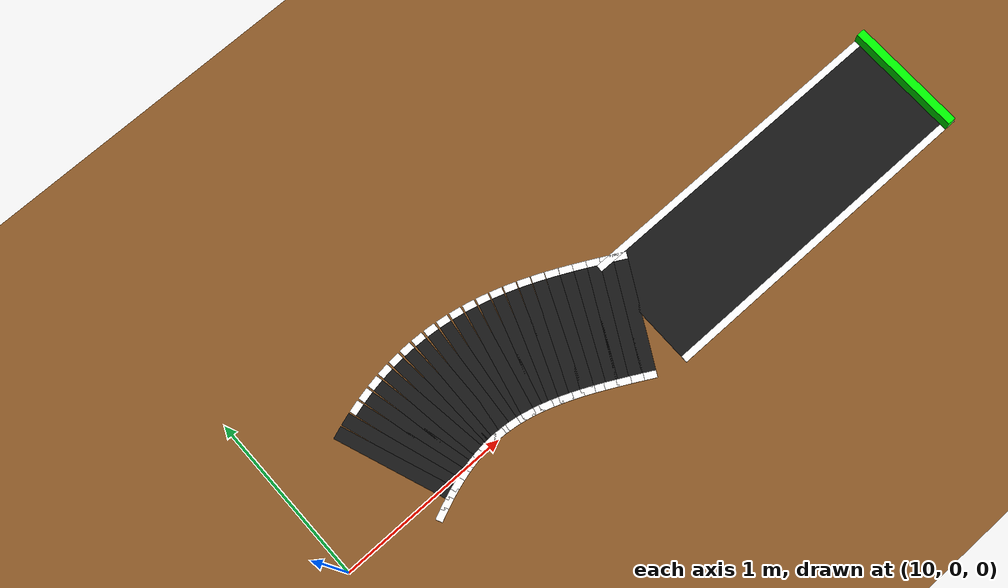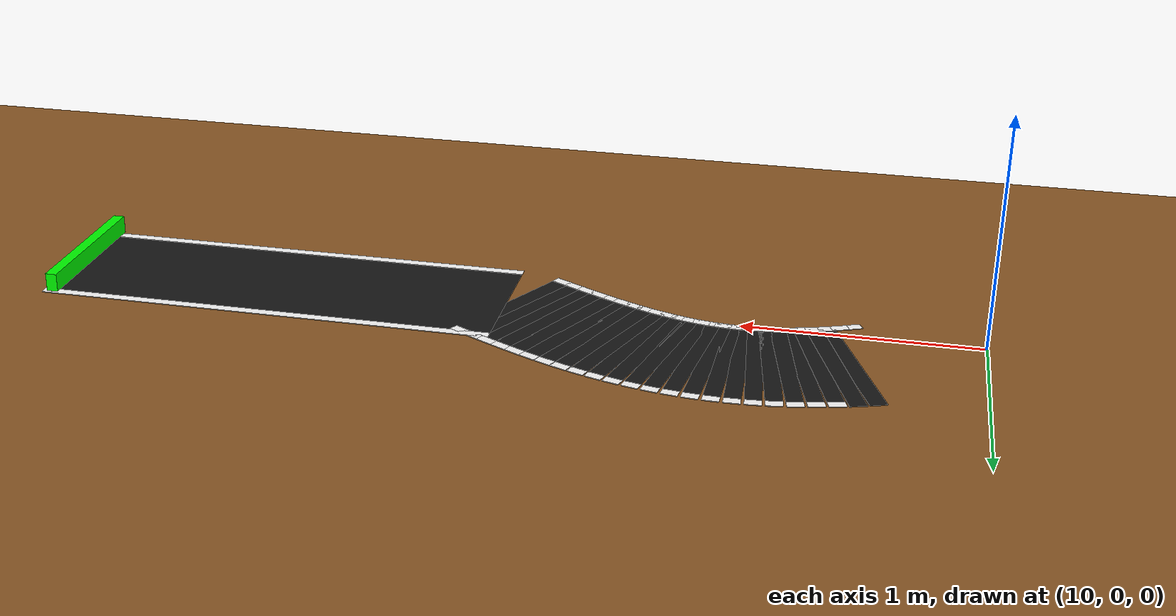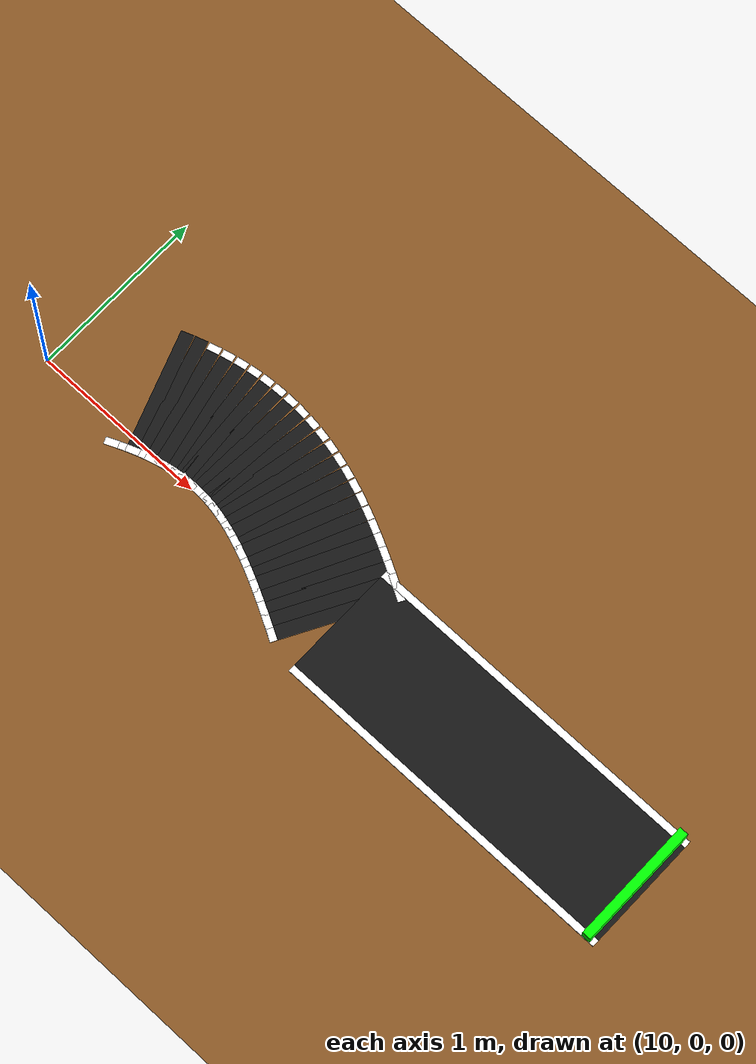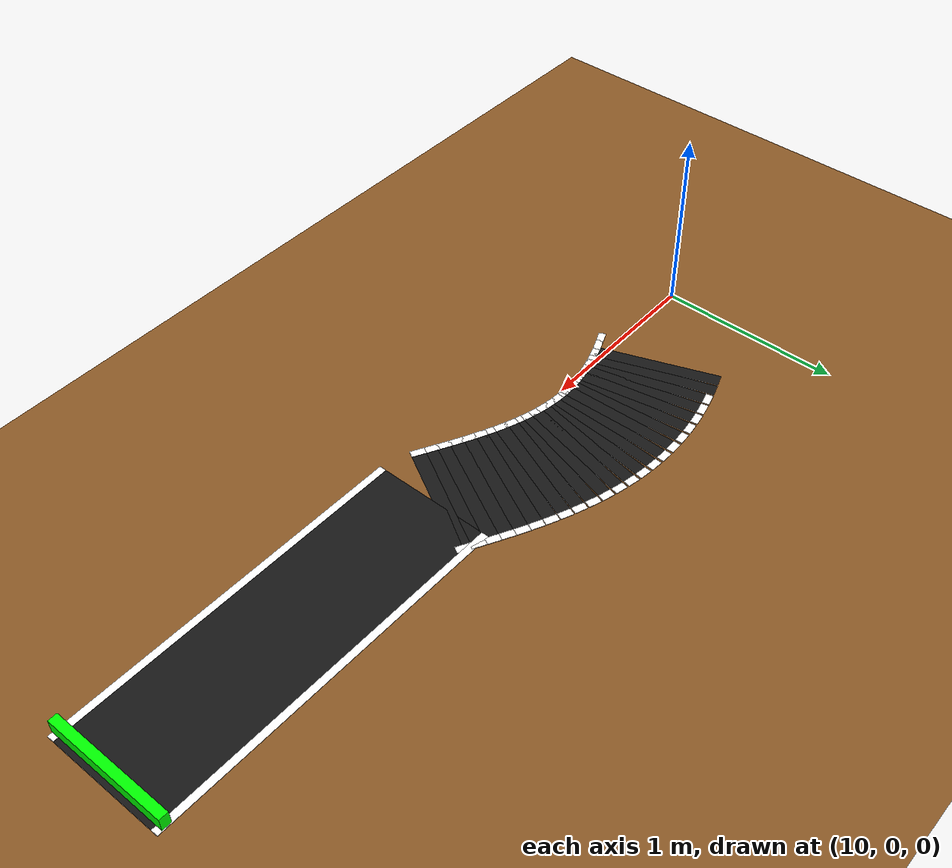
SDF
<sdf version="1.9">
 <world name="lka_world">
  <model name="ground_plane">
   <static>true</static>
   <link name="link">
    <collision name="col">
     <geometry><plane><normal>0 0 1</normal><size>100 100</size></plane></geometry>
     <surface><friction><ode><mu>0.8</mu><mu2>0.8</mu2></ode></friction></surface>
    </collision>
    <visual name="vis">
     <geometry><plane><normal>0 0 1</normal><size>100 100</size></plane></geometry>
     <material><ambient>0.45 0.28 0.10 1</ambient><diffuse>0.55 0.35 0.15 1</diffuse></material>
    </visual>
   </link>
  </model>
  <model name="c3_right_6">
   <static>true</static>
   <pose>10.539553 -0.093383 0.002000 0.000000 0.000000 0.415829</pose>
   <link name="link">
    <collision name="col">
     <geometry><box><size>0.074318 0.040000 0.003000</size></box></geometry>
     <surface><friction><ode><mu>1.0</mu><mu2>1.0</mu2></ode></friction></surface>
    </collision>
    <visual name="vis">
     <geometry><box><size>0.074318 0.040000 0.003000</size></box></geometry>
     <material><ambient>1.0 1.0 1.0 1</ambient><diffuse>1.0 1.0 1.0 1</diffuse></material>
    </visual>
   </link>
  </model>
  <model name="c3_right_7">
   <static>true</static>
   <pose>10.593244 -0.070571 0.002000 0.000000 0.000000 0.386829</pose>
   <link name="link">
    <collision name="col">
     <geometry><box><size>0.073483 0.040000 0.003000</size></box></geometry>
     <surface><friction><ode><mu>1.0</mu><mu2>1.0</mu2></ode></friction></surface>
    </collision>
    <visual name="vis">
     <geometry><box><size>0.073483 0.040000 0.003000</size></box></geometry>
     <material><ambient>1.0 1.0 1.0 1</ambient><diffuse>1.0 1.0 1.0 1</diffuse></material>
    </visual>
   </link>
  </model>
  <model name="c3_road_8">
   <static>true</static>
   <pose>10.531250 0.259333 0.001000 0.000000 0.000000 0.353679</pose>
   <link name="link">
    <collision name="col">
     <geometry><box><size>0.072621 0.700000 0.002000</size></box></geometry>
     <surface><friction><ode><mu>1.0</mu><mu2>1.0</mu2></ode></friction></surface>
    </collision>
    <visual name="vis">
     <geometry><box><size>0.072621 0.700000 0.002000</size></box></geometry>
     <material><ambient>0.06 0.06 0.06 1</ambient><diffuse>0.09 0.09 0.09 1</diffuse></material>
    </visual>
   </link>
  </model>
  <model name="c3_right_8">
   <static>true</static>
   <pose>10.645546 -0.050242 0.002000 0.000000 0.000000 0.353679</pose>
   <link name="link">
    <collision name="col">
     <geometry><box><size>0.072621 0.040000 0.003000</size></box></geometry>
     <surface><friction><ode><mu>1.0</mu><mu2>1.0</mu2></ode></friction></surface>
    </collision>
    <visual name="vis">
     <geometry><box><size>0.072621 0.040000 0.003000</size></box></geometry>
     <material><ambient>1.0 1.0 1.0 1</ambient><diffuse>1.0 1.0 1.0 1</diffuse></material>
    </visual>
   </link>
  </model>
  <model name="c3_road_9">
   <static>true</static>
   <pose>10.593750 0.281123 0.001000 0.000000 0.000000 0.316489</pose>
   <link name="link">
    <collision name="col">
     <geometry><box><size>0.071764 0.700000 0.002000</size></box></geometry>
     <surface><friction><ode><mu>1.0</mu><mu2>1.0</mu2></ode></friction></surface>
    </collision>
    <visual name="vis">
     <geometry><box><size>0.071764 0.700000 0.002000</size></box></geometry>
     <material><ambient>0.06 0.06 0.06 1</ambient><diffuse>0.09 0.09 0.09 1</diffuse></material>
    </visual>
   </link>
  </model>
  <model name="c3_right_9">
   <static>true</static>
   <pose>10.696457 -0.032488 0.002000 0.000000 0.000000 0.316489</pose>
   <link name="link">
    <collision name="col">
     <geometry><box><size>0.071764 0.040000 0.003000</size></box></geometry>
     <surface><friction><ode><mu>1.0</mu><mu2>1.0</mu2></ode></friction></surface>
    </collision>
    <visual name="vis">
     <geometry><box><size>0.071764 0.040000 0.003000</size></box></geometry>
     <material><ambient>1.0 1.0 1.0 1</ambient><diffuse>1.0 1.0 1.0 1</diffuse></material>
    </visual>
   </link>
  </model>
  <model name="c3_road_10">
   <static>true</static>
   <pose>10.656250 0.300205 0.001000 0.000000 0.000000 0.275453</pose>
   <link name="link">
    <collision name="col">
     <geometry><box><size>0.070947 0.700000 0.002000</size></box></geometry>
     <surface><friction><ode><mu>1.0</mu><mu2>1.0</mu2></ode></friction></surface>
    </collision>
    <visual name="vis">
     <geometry><box><size>0.070947 0.700000 0.002000</size></box></geometry>
     <material><ambient>0.06 0.06 0.06 1</ambient><diffuse>0.09 0.09 0.09 1</diffuse></material>
    </visual>
   </link>
  </model>
  <model name="c3_left_10">
   <static>true</static>
   <pose>10.566496 0.617765 0.002000 0.000000 0.000000 0.275453</pose>
   <link name="link">
    <collision name="col">
     <geometry><box><size>0.070947 0.040000 0.003000</size></box></geometry>
     <surface><friction><ode><mu>1.0</mu><mu2>1.0</mu2></ode></friction></surface>
    </collision>
    <visual name="vis">
     <geometry><box><size>0.070947 0.040000 0.003000</size></box></geometry>
     <material><ambient>1.0 1.0 1.0 1</ambient><diffuse>1.0 1.0 1.0 1</diffuse></material>
    </visual>
   </link>
  </model>
  <model name="c3_right_10">
   <static>true</static>
   <pose>10.746004 -0.017355 0.002000 0.000000 0.000000 0.275453</pose>
   <link name="link">
    <collision name="col">
     <geometry><box><size>0.070947 0.040000 0.003000</size></box></geometry>
     <surface><friction><ode><mu>1.0</mu><mu2>1.0</mu2></ode></friction></surface>
    </collision>
    <visual name="vis">
     <geometry><box><size>0.070947 0.040000 0.003000</size></box></geometry>
     <material><ambient>1.0 1.0 1.0 1</ambient><diffuse>1.0 1.0 1.0 1</diffuse></material>
    </visual>
   </link>
  </model>
  <model name="c3_road_11">
   <static>true</static>
   <pose>10.718750 0.316396 0.001000 0.000000 0.000000 0.230866</pose>
   <link name="link">
    <collision name="col">
     <geometry><box><size>0.070202 0.700000 0.002000</size></box></geometry>
     <surface><friction><ode><mu>1.0</mu><mu2>1.0</mu2></ode></friction></surface>
    </collision>
    <visual name="vis">
     <geometry><box><size>0.070202 0.700000 0.002000</size></box></geometry>
     <material><ambient>0.06 0.06 0.06 1</ambient><diffuse>0.09 0.09 0.09 1</diffuse></material>
    </visual>
   </link>
  </model>
  <model name="c3_left_11">
   <static>true</static>
   <pose>10.643239 0.637641 0.002000 0.000000 0.000000 0.230866</pose>
   <link name="link">
    <collision name="col">
     <geometry><box><size>0.070202 0.040000 0.003000</size></box></geometry>
     <surface><friction><ode><mu>1.0</mu><mu2>1.0</mu2></ode></friction></surface>
    </collision>
    <visual name="vis">
     <geometry><box><size>0.070202 0.040000 0.003000</size></box></geometry>
     <material><ambient>1.0 1.0 1.0 1</ambient><diffuse>1.0 1.0 1.0 1</diffuse></material>
    </visual>
   </link>
  </model>
  <model name="c3_right_11">
   <static>true</static>
   <pose>10.794261 -0.004848 0.002000 0.000000 0.000000 0.230866</pose>
   <link name="link">
    <collision name="col">
     <geometry><box><size>0.070202 0.040000 0.003000</size></box></geometry>
     <surface><friction><ode><mu>1.0</mu><mu2>1.0</mu2></ode></friction></surface>
    </collision>
    <visual name="vis">
     <geometry><box><size>0.070202 0.040000 0.003000</size></box></geometry>
     <material><ambient>1.0 1.0 1.0 1</ambient><diffuse>1.0 1.0 1.0 1</diffuse></material>
    </visual>
   </link>
  </model>
  <model name="c3_road_12">
   <static>true</static>
   <pose>10.781250 0.329540 0.001000 0.000000 0.000000 0.183137</pose>
   <link name="link">
    <collision name="col">
     <geometry><box><size>0.069562 0.700000 0.002000</size></box></geometry>
     <surface><friction><ode><mu>1.0</mu><mu2>1.0</mu2></ode></friction></surface>
    </collision>
    <visual name="vis">
     <geometry><box><size>0.069562 0.700000 0.002000</size></box></geometry>
     <material><ambient>0.06 0.06 0.06 1</ambient><diffuse>0.09 0.09 0.09 1</diffuse></material>
    </visual>
   </link>
  </model>
  <model name="c3_left_12">
   <static>true</static>
   <pose>10.721152 0.654022 0.002000 0.000000 0.000000 0.183137</pose>
   <link name="link">
    <collision name="col">
     <geometry><box><size>0.069562 0.040000 0.003000</size></box></geometry>
     <surface><friction><ode><mu>1.0</mu><mu2>1.0</mu2></ode></friction></surface>
    </collision>
    <visual name="vis">
     <geometry><box><size>0.069562 0.040000 0.003000</size></box></geometry>
     <material><ambient>1.0 1.0 1.0 1</ambient><diffuse>1.0 1.0 1.0 1</diffuse></material>
    </visual>
   </link>
  </model>
  <model name="c3_right_12">
   <static>true</static>
   <pose>10.841348 0.005059 0.002000 0.000000 0.000000 0.183137</pose>
   <link name="link">
    <collision name="col">
     <geometry><box><size>0.069562 0.040000 0.003000</size></box></geometry>
     <surface><friction><ode><mu>1.0</mu><mu2>1.0</mu2></ode></friction></surface>
    </collision>
    <visual name="vis">
     <geometry><box><size>0.069562 0.040000 0.003000</size></box></geometry>
     <material><ambient>1.0 1.0 1.0 1</ambient><diffuse>1.0 1.0 1.0 1</diffuse></material>
    </visual>
   </link>
  </model>
  <model name="c3_road_13">
   <static>true</static>
   <pose>10.843750 0.339511 0.001000 0.000000 0.000000 0.132797</pose>
   <link name="link">
    <collision name="col">
     <geometry><box><size>0.069055 0.700000 0.002000</size></box></geometry>
     <surface><friction><ode><mu>1.0</mu><mu2>1.0</mu2></ode></friction></surface>
    </collision>
    <visual name="vis">
     <geometry><box><size>0.069055 0.700000 0.002000</size></box></geometry>
     <material><ambient>0.06 0.06 0.06 1</ambient><diffuse>0.09 0.09 0.09 1</diffuse></material>
    </visual>
   </link>
  </model>
  <model name="c3_left_13">
   <static>true</static>
   <pose>10.800056 0.666605 0.002000 0.000000 0.000000 0.132797</pose>
   <link name="link">
    <collision name="col">
     <geometry><box><size>0.069055 0.040000 0.003000</size></box></geometry>
     <surface><friction><ode><mu>1.0</mu><mu2>1.0</mu2></ode></friction></surface>
    </collision>
    <visual name="vis">
     <geometry><box><size>0.069055 0.040000 0.003000</size></box></geometry>
     <material><ambient>1.0 1.0 1.0 1</ambient><diffuse>1.0 1.0 1.0 1</diffuse></material>
    </visual>
   </link>
  </model>
  <model name="c3_right_13">
   <static>true</static>
   <pose>10.887444 0.012416 0.002000 0.000000 0.000000 0.132797</pose>
   <link name="link">
    <collision name="col">
     <geometry><box><size>0.069055 0.040000 0.003000</size></box></geometry>
     <surface><friction><ode><mu>1.0</mu><mu2>1.0</mu2></ode></friction></surface>
    </collision>
    <visual name="vis">
     <geometry><box><size>0.069055 0.040000 0.003000</size></box></geometry>
     <material><ambient>1.0 1.0 1.0 1</ambient><diffuse>1.0 1.0 1.0 1</diffuse></material>
    </visual>
   </link>
  </model>
  <model name="c3_road_14">
   <static>true</static>
   <pose>10.906250 0.346212 0.001000 0.000000 0.000000 0.080494</pose>
   <link name="link">
    <collision name="col">
     <geometry><box><size>0.068703 0.700000 0.002000</size></box></geometry>
     <surface><friction><ode><mu>1.0</mu><mu2>1.0</mu2></ode></friction></surface>
    </collision>
    <visual name="vis">
     <geometry><box><size>0.068703 0.700000 0.002000</size></box></geometry>
     <material><ambient>0.06 0.06 0.06 1</ambient><diffuse>0.09 0.09 0.09 1</diffuse></material>
    </visual>
   </link>
  </model>
  <model name="c3_left_14">
   <static>true</static>
   <pose>10.879716 0.675143 0.002000 0.000000 0.000000 0.080494</pose>
   <link name="link">
    <collision name="col">
     <geometry><box><size>0.068703 0.040000 0.003000</size></box></geometry>
     <surface><friction><ode><mu>1.0</mu><mu2>1.0</mu2></ode></friction></surface>
    </collision>
    <visual name="vis">
     <geometry><box><size>0.068703 0.040000 0.003000</size></box></geometry>
     <material><ambient>1.0 1.0 1.0 1</ambient><diffuse>1.0 1.0 1.0 1</diffuse></material>
    </visual>
   </link>
  </model>
  <model name="c3_right_14">
   <static>true</static>
   <pose>10.932784 0.017280 0.002000 0.000000 0.000000 0.080494</pose>
   <link name="link">
    <collision name="col">
     <geometry><box><size>0.068703 0.040000 0.003000</size></box></geometry>
     <surface><friction><ode><mu>1.0</mu><mu2>1.0</mu2></ode></friction></surface>
    </collision>
    <visual name="vis">
     <geometry><box><size>0.068703 0.040000 0.003000</size></box></geometry>
     <material><ambient>1.0 1.0 1.0 1</ambient><diffuse>1.0 1.0 1.0 1</diffuse></material>
    </visual>
   </link>
  </model>
  <model name="c3_road_15">
   <static>true</static>
   <pose>10.968750 0.349578 0.001000 0.000000 0.000000 0.026969</pose>
   <link name="link">
    <collision name="col">
     <geometry><box><size>0.068523 0.700000 0.002000</size></box></geometry>
     <surface><friction><ode><mu>1.0</mu><mu2>1.0</mu2></ode></friction></surface>
    </collision>
    <visual name="vis">
     <geometry><box><size>0.068523 0.700000 0.002000</size></box></geometry>
     <material><ambient>0.06 0.06 0.06 1</ambient><diffuse>0.09 0.09 0.09 1</diffuse></material>
    </visual>
   </link>
  </model>
  <model name="c3_left_15">
   <static>true</static>
   <pose>10.959851 0.679458 0.002000 0.000000 0.000000 0.026969</pose>
   <link name="link">
    <collision name="col">
     <geometry><box><size>0.068523 0.040000 0.003000</size></box></geometry>
     <surface><friction><ode><mu>1.0</mu><mu2>1.0</mu2></ode></friction></surface>
    </collision>
    <visual name="vis">
     <geometry><box><size>0.068523 0.040000 0.003000</size></box></geometry>
     <material><ambient>1.0 1.0 1.0 1</ambient><diffuse>1.0 1.0 1.0 1</diffuse></material>
    </visual>
   </link>
  </model>
  <model name="c3_right_15">
   <static>true</static>
   <pose>10.977649 0.019698 0.002000 0.000000 0.000000 0.026969</pose>
   <link name="link">
    <collision name="col">
     <geometry><box><size>0.068523 0.040000 0.003000</size></box></geometry>
     <surface><friction><ode><mu>1.0</mu><mu2>1.0</mu2></ode></friction></surface>
    </collision>
    <visual name="vis">
     <geometry><box><size>0.068523 0.040000 0.003000</size></box></geometry>
     <material><ambient>1.0 1.0 1.0 1</ambient><diffuse>1.0 1.0 1.0 1</diffuse></material>
    </visual>
   </link>
  </model>
  <model name="c3_road_16">
   <static>true</static>
   <pose>11.031250 0.349578 0.001000 0.000000 0.000000 -0.026969</pose>
   <link name="link">
    <collision name="col">
     <geometry><box><size>0.068523 0.700000 0.002000</size></box></geometry>
     <surface><friction><ode><mu>1.0</mu><mu2>1.0</mu2></ode></friction></surface>
    </collision>
    <visual name="vis">
     <geometry><box><size>0.068523 0.700000 0.002000</size></box></geometry>
     <material><ambient>0.06 0.06 0.06 1</ambient><diffuse>0.09 0.09 0.09 1</diffuse></material>
    </visual>
   </link>
  </model>
  <model name="c3_left_16">
   <static>true</static>
   <pose>11.040149 0.679458 0.002000 0.000000 0.000000 -0.026969</pose>
   <link name="link">
    <collision name="col">
     <geometry><box><size>0.068523 0.040000 0.003000</size></box></geometry>
     <surface><friction><ode><mu>1.0</mu><mu2>1.0</mu2></ode></friction></surface>
    </collision>
    <visual name="vis">
     <geometry><box><size>0.068523 0.040000 0.003000</size></box></geometry>
     <material><ambient>1.0 1.0 1.0 1</ambient><diffuse>1.0 1.0 1.0 1</diffuse></material>
    </visual>
   </link>
  </model>
  <model name="c3_right_16">
   <static>true</static>
   <pose>11.022351 0.019698 0.002000 0.000000 0.000000 -0.026969</pose>
   <link name="link">
    <collision name="col">
     <geometry><box><size>0.068523 0.040000 0.003000</size></box></geometry>
     <surface><friction><ode><mu>1.0</mu><mu2>1.0</mu2></ode></friction></surface>
    </collision>
    <visual name="vis">
     <geometry><box><size>0.068523 0.040000 0.003000</size></box></geometry>
     <material><ambient>1.0 1.0 1.0 1</ambient><diffuse>1.0 1.0 1.0 1</diffuse></material>
    </visual>
   </link>
  </model>
  <model name="c3_road_17">
   <static>true</static>
   <pose>11.093750 0.346212 0.001000 0.000000 0.000000 -0.080494</pose>
   <link name="link">
    <collision name="col">
     <geometry><box><size>0.068703 0.700000 0.002000</size></box></geometry>
     <surface><friction><ode><mu>1.0</mu><mu2>1.0</mu2></ode></friction></surface>
    </collision>
    <visual name="vis">
     <geometry><box><size>0.068703 0.700000 0.002000</size></box></geometry>
     <material><ambient>0.06 0.06 0.06 1</ambient><diffuse>0.09 0.09 0.09 1</diffuse></material>
    </visual>
   </link>
  </model>
  <model name="c3_left_17">
   <static>true</static>
   <pose>11.120284 0.675143 0.002000 0.000000 0.000000 -0.080494</pose>
   <link name="link">
    <collision name="col">
     <geometry><box><size>0.068703 0.040000 0.003000</size></box></geometry>
     <surface><friction><ode><mu>1.0</mu><mu2>1.0</mu2></ode></friction></surface>
    </collision>
    <visual name="vis">
     <geometry><box><size>0.068703 0.040000 0.003000</size></box></geometry>
     <material><ambient>1.0 1.0 1.0 1</ambient><diffuse>1.0 1.0 1.0 1</diffuse></material>
    </visual>
   </link>
  </model>
  <model name="c3_right_17">
   <static>true</static>
   <pose>11.067216 0.017280 0.002000 0.000000 0.000000 -0.080494</pose>
   <link name="link">
    <collision name="col">
     <geometry><box><size>0.068703 0.040000 0.003000</size></box></geometry>
     <surface><friction><ode><mu>1.0</mu><mu2>1.0</mu2></ode></friction></surface>
    </collision>
    <visual name="vis">
     <geometry><box><size>0.068703 0.040000 0.003000</size></box></geometry>
     <material><ambient>1.0 1.0 1.0 1</ambient><diffuse>1.0 1.0 1.0 1</diffuse></material>
    </visual>
   </link>
  </model>
  <model name="c3_road_18">
   <static>true</static>
   <pose>11.156250 0.339511 0.001000 0.000000 0.000000 -0.132797</pose>
   <link name="link">
    <collision name="col">
     <geometry><box><size>0.069055 0.700000 0.002000</size></box></geometry>
     <surface><friction><ode><mu>1.0</mu><mu2>1.0</mu2></ode></friction></surface>
    </collision>
    <visual name="vis">
     <geometry><box><size>0.069055 0.700000 0.002000</size></box></geometry>
     <material><ambient>0.06 0.06 0.06 1</ambient><diffuse>0.09 0.09 0.09 1</diffuse></material>
    </visual>
   </link>
  </model>
  <model name="c3_left_18">
   <static>true</static>
   <pose>11.199944 0.666605 0.002000 0.000000 0.000000 -0.132797</pose>
   <link name="link">
    <collision name="col">
     <geometry><box><size>0.069055 0.040000 0.003000</size></box></geometry>
     <surface><friction><ode><mu>1.0</mu><mu2>1.0</mu2></ode></friction></surface>
    </collision>
    <visual name="vis">
     <geometry><box><size>0.069055 0.040000 0.003000</size></box></geometry>
     <material><ambient>1.0 1.0 1.0 1</ambient><diffuse>1.0 1.0 1.0 1</diffuse></material>
    </visual>
   </link>
  </model>
  <model name="c3_right_18">
   <static>true</static>
   <pose>11.112556 0.012416 0.002000 0.000000 0.000000 -0.132797</pose>
   <link name="link">
    <collision name="col">
     <geometry><box><size>0.069055 0.040000 0.003000</size></box></geometry>
     <surface><friction><ode><mu>1.0</mu><mu2>1.0</mu2></ode></friction></surface>
    </collision>
    <visual name="vis">
     <geometry><box><size>0.069055 0.040000 0.003000</size></box></geometry>
     <material><ambient>1.0 1.0 1.0 1</ambient><diffuse>1.0 1.0 1.0 1</diffuse></material>
    </visual>
   </link>
  </model>
  <model name="c3_road_19">
   <static>true</static>
   <pose>11.218750 0.329540 0.001000 0.000000 0.000000 -0.183137</pose>
   <link name="link">
    <collision name="col">
     <geometry><box><size>0.069562 0.700000 0.002000</size></box></geometry>
     <surface><friction><ode><mu>1.0</mu><mu2>1.0</mu2></ode></friction></surface>
    </collision>
    <visual name="vis">
     <geometry><box><size>0.069562 0.700000 0.002000</size></box></geometry>
     <material><ambient>0.06 0.06 0.06 1</ambient><diffuse>0.09 0.09 0.09 1</diffuse></material>
    </visual>
   </link>
  </model>
  <model name="c3_left_19">
   <static>true</static>
   <pose>11.278848 0.654022 0.002000 0.000000 0.000000 -0.183137</pose>
   <link name="link">
    <collision name="col">
     <geometry><box><size>0.069562 0.040000 0.003000</size></box></geometry>
     <surface><friction><ode><mu>1.0</mu><mu2>1.0</mu2></ode></friction></surface>
    </collision>
    <visual name="vis">
     <geometry><box><size>0.069562 0.040000 0.003000</size></box></geometry>
     <material><ambient>1.0 1.0 1.0 1</ambient><diffuse>1.0 1.0 1.0 1</diffuse></material>
    </visual>
   </link>
  </model>
  <model name="c3_right_19">
   <static>true</static>
   <pose>11.158652 0.005059 0.002000 0.000000 0.000000 -0.183137</pose>
   <link name="link">
    <collision name="col">
     <geometry><box><size>0.069562 0.040000 0.003000</size></box></geometry>
     <surface><friction><ode><mu>1.0</mu><mu2>1.0</mu2></ode></friction></surface>
    </collision>
    <visual name="vis">
     <geometry><box><size>0.069562 0.040000 0.003000</size></box></geometry>
     <material><ambient>1.0 1.0 1.0 1</ambient><diffuse>1.0 1.0 1.0 1</diffuse></material>
    </visual>
   </link>
  </model>
  <model name="c3_road_20">
   <static>true</static>
   <pose>11.281250 0.316396 0.001000 0.000000 0.000000 -0.230866</pose>
   <link name="link">
    <collision name="col">
     <geometry><box><size>0.070202 0.700000 0.002000</size></box></geometry>
     <surface><friction><ode><mu>1.0</mu><mu2>1.0</mu2></ode></friction></surface>
    </collision>
    <visual name="vis">
     <geometry><box><size>0.070202 0.700000 0.002000</size></box></geometry>
     <material><ambient>0.06 0.06 0.06 1</ambient><diffuse>0.09 0.09 0.09 1</diffuse></material>
    </visual>
   </link>
  </model>
  <model name="c3_left_20">
   <static>true</static>
   <pose>11.356761 0.637641 0.002000 0.000000 0.000000 -0.230866</pose>
   <link name="link">
    <collision name="col">
     <geometry><box><size>0.070202 0.040000 0.003000</size></box></geometry>
     <surface><friction><ode><mu>1.0</mu><mu2>1.0</mu2></ode></friction></surface>
    </collision>
    <visual name="vis">
     <geometry><box><size>0.070202 0.040000 0.003000</size></box></geometry>
     <material><ambient>1.0 1.0 1.0 1</ambient><diffuse>1.0 1.0 1.0 1</diffuse></material>
    </visual>
   </link>
  </model>
  <model name="c3_right_20">
   <static>true</static>
   <pose>11.205739 -0.004848 0.002000 0.000000 0.000000 -0.230866</pose>
   <link name="link">
    <collision name="col">
     <geometry><box><size>0.070202 0.040000 0.003000</size></box></geometry>
     <surface><friction><ode><mu>1.0</mu><mu2>1.0</mu2></ode></friction></surface>
    </collision>
    <visual name="vis">
     <geometry><box><size>0.070202 0.040000 0.003000</size></box></geometry>
     <material><ambient>1.0 1.0 1.0 1</ambient><diffuse>1.0 1.0 1.0 1</diffuse></material>
    </visual>
   </link>
  </model>
  <model name="c3_road_21">
   <static>true</static>
   <pose>11.343750 0.300205 0.001000 0.000000 0.000000 -0.275453</pose>
   <link name="link">
    <collision name="col">
     <geometry><box><size>0.070947 0.700000 0.002000</size></box></geometry>
     <surface><friction><ode><mu>1.0</mu><mu2>1.0</mu2></ode></friction></surface>
    </collision>
    <visual name="vis">
     <geometry><box><size>0.070947 0.700000 0.002000</size></box></geometry>
     <material><ambient>0.06 0.06 0.06 1</ambient><diffuse>0.09 0.09 0.09 1</diffuse></material>
    </visual>
   </link>
  </model>
  <model name="c3_left_21">
   <static>true</static>
   <pose>11.433504 0.617765 0.002000 0.000000 0.000000 -0.275453</pose>
   <link name="link">
    <collision name="col">
     <geometry><box><size>0.070947 0.040000 0.003000</size></box></geometry>
     <surface><friction><ode><mu>1.0</mu><mu2>1.0</mu2></ode></friction></surface>
    </collision>
    <visual name="vis">
     <geometry><box><size>0.070947 0.040000 0.003000</size></box></geometry>
     <material><ambient>1.0 1.0 1.0 1</ambient><diffuse>1.0 1.0 1.0 1</diffuse></material>
    </visual>
   </link>
  </model>
  <model name="c3_right_21">
   <static>true</static>
   <pose>11.253996 -0.017355 0.002000 0.000000 0.000000 -0.275453</pose>
   <link name="link">
    <collision name="col">
     <geometry><box><size>0.070947 0.040000 0.003000</size></box></geometry>
     <surface><friction><ode><mu>1.0</mu><mu2>1.0</mu2></ode></friction></surface>
    </collision>
    <visual name="vis">
     <geometry><box><size>0.070947 0.040000 0.003000</size></box></geometry>
     <material><ambient>1.0 1.0 1.0 1</ambient><diffuse>1.0 1.0 1.0 1</diffuse></material>
    </visual>
   </link>
  </model>
  <model name="c3_road_22">
   <static>true</static>
   <pose>11.406250 0.281123 0.001000 0.000000 0.000000 -0.316489</pose>
   <link name="link">
    <collision name="col">
     <geometry><box><size>0.071764 0.700000 0.002000</size></box></geometry>
     <surface><friction><ode><mu>1.0</mu><mu2>1.0</mu2></ode></friction></surface>
    </collision>
    <visual name="vis">
     <geometry><box><size>0.071764 0.700000 0.002000</size></box></geometry>
     <material><ambient>0.06 0.06 0.06 1</ambient><diffuse>0.09 0.09 0.09 1</diffuse></material>
    </visual>
   </link>
  </model>
  <model name="c3_left_22">
   <static>true</static>
   <pose>11.508957 0.594733 0.002000 0.000000 0.000000 -0.316489</pose>
   <link name="link">
    <collision name="col">
     <geometry><box><size>0.071764 0.040000 0.003000</size></box></geometry>
     <surface><friction><ode><mu>1.0</mu><mu2>1.0</mu2></ode></friction></surface>
    </collision>
    <visual name="vis">
     <geometry><box><size>0.071764 0.040000 0.003000</size></box></geometry>
     <material><ambient>1.0 1.0 1.0 1</ambient><diffuse>1.0 1.0 1.0 1</diffuse></material>
    </visual>
   </link>
  </model>
  <model name="c3_right_22">
   <static>true</static>
   <pose>11.303543 -0.032488 0.002000 0.000000 0.000000 -0.316489</pose>
   <link name="link">
    <collision name="col">
     <geometry><box><size>0.071764 0.040000 0.003000</size></box></geometry>
     <surface><friction><ode><mu>1.0</mu><mu2>1.0</mu2></ode></friction></surface>
    </collision>
    <visual name="vis">
     <geometry><box><size>0.071764 0.040000 0.003000</size></box></geometry>
     <material><ambient>1.0 1.0 1.0 1</ambient><diffuse>1.0 1.0 1.0 1</diffuse></material>
    </visual>
   </link>
  </model>
  <model name="c3_road_23">
   <static>true</static>
   <pose>11.468750 0.259333 0.001000 0.000000 0.000000 -0.353679</pose>
   <link name="link">
    <collision name="col">
     <geometry><box><size>0.072621 0.700000 0.002000</size></box></geometry>
     <surface><friction><ode><mu>1.0</mu><mu2>1.0</mu2></ode></friction></surface>
    </collision>
    <visual name="vis">
     <geometry><box><size>0.072621 0.700000 0.002000</size></box></geometry>
     <material><ambient>0.06 0.06 0.06 1</ambient><diffuse>0.09 0.09 0.09 1</diffuse></material>
    </visual>
   </link>
  </model>
  <model name="c3_left_23">
   <static>true</static>
   <pose>11.583046 0.568908 0.002000 0.000000 0.000000 -0.353679</pose>
   <link name="link">
    <collision name="col">
     <geometry><box><size>0.072621 0.040000 0.003000</size></box></geometry>
     <surface><friction><ode><mu>1.0</mu><mu2>1.0</mu2></ode></friction></surface>
    </collision>
    <visual name="vis">
     <geometry><box><size>0.072621 0.040000 0.003000</size></box></geometry>
     <material><ambient>1.0 1.0 1.0 1</ambient><diffuse>1.0 1.0 1.0 1</diffuse></material>
    </visual>
   </link>
  </model>
  <model name="c3_right_23">
   <static>true</static>
   <pose>11.354454 -0.050242 0.002000 0.000000 0.000000 -0.353679</pose>
   <link name="link">
    <collision name="col">
     <geometry><box><size>0.072621 0.040000 0.003000</size></box></geometry>
     <surface><friction><ode><mu>1.0</mu><mu2>1.0</mu2></ode></friction></surface>
    </collision>
    <visual name="vis">
     <geometry><box><size>0.072621 0.040000 0.003000</size></box></geometry>
     <material><ambient>1.0 1.0 1.0 1</ambient><diffuse>1.0 1.0 1.0 1</diffuse></material>
    </visual>
   </link>
  </model>
  <model name="c3_road_24">
   <static>true</static>
   <pose>11.531250 0.235046 0.001000 0.000000 0.000000 -0.386829</pose>
   <link name="link">
    <collision name="col">
     <geometry><box><size>0.073483 0.700000 0.002000</size></box></geometry>
     <surface><friction><ode><mu>1.0</mu><mu2>1.0</mu2></ode></friction></surface>
    </collision>
    <visual name="vis">
     <geometry><box><size>0.073483 0.700000 0.002000</size></box></geometry>
     <material><ambient>0.06 0.06 0.06 1</ambient><diffuse>0.09 0.09 0.09 1</diffuse></material>
    </visual>
   </link>
  </model>
  <model name="c3_left_24">
   <static>true</static>
   <pose>11.655744 0.540662 0.002000 0.000000 0.000000 -0.386829</pose>
   <link name="link">
    <collision name="col">
     <geometry><box><size>0.073483 0.040000 0.003000</size></box></geometry>
     <surface><friction><ode><mu>1.0</mu><mu2>1.0</mu2></ode></friction></surface>
    </collision>
    <visual name="vis">
     <geometry><box><size>0.073483 0.040000 0.003000</size></box></geometry>
     <material><ambient>1.0 1.0 1.0 1</ambient><diffuse>1.0 1.0 1.0 1</diffuse></material>
    </visual>
   </link>
  </model>
  <model name="c3_right_24">
   <static>true</static>
   <pose>11.406756 -0.070571 0.002000 0.000000 0.000000 -0.386829</pose>
   <link name="link">
    <collision name="col">
     <geometry><box><size>0.073483 0.040000 0.003000</size></box></geometry>
     <surface><friction><ode><mu>1.0</mu><mu2>1.0</mu2></ode></friction></surface>
    </collision>
    <visual name="vis">
     <geometry><box><size>0.073483 0.040000 0.003000</size></box></geometry>
     <material><ambient>1.0 1.0 1.0 1</ambient><diffuse>1.0 1.0 1.0 1</diffuse></material>
    </visual>
   </link>
  </model>
  <model name="c3_road_25">
   <static>true</static>
   <pose>11.593750 0.208495 0.001000 0.000000 0.000000 -0.415829</pose>
   <link name="link">
    <collision name="col">
     <geometry><box><size>0.074318 0.700000 0.002000</size></box></geometry>
     <surface><friction><ode><mu>1.0</mu><mu2>1.0</mu2></ode></friction></surface>
    </collision>
    <visual name="vis">
     <geometry><box><size>0.074318 0.700000 0.002000</size></box></geometry>
     <material><ambient>0.06 0.06 0.06 1</ambient><diffuse>0.09 0.09 0.09 1</diffuse></material>
    </visual>
   </link>
  </model>
  <model name="c3_left_25">
   <static>true</static>
   <pose>11.727053 0.510373 0.002000 0.000000 0.000000 -0.415829</pose>
   <link name="link">
    <collision name="col">
     <geometry><box><size>0.074318 0.040000 0.003000</size></box></geometry>
     <surface><friction><ode><mu>1.0</mu><mu2>1.0</mu2></ode></friction></surface>
    </collision>
    <visual name="vis">
     <geometry><box><size>0.074318 0.040000 0.003000</size></box></geometry>
     <material><ambient>1.0 1.0 1.0 1</ambient><diffuse>1.0 1.0 1.0 1</diffuse></material>
    </visual>
   </link>
  </model>
  <model name="c3_right_25">
   <static>true</static>
   <pose>11.460447 -0.093383 0.002000 0.000000 0.000000 -0.415829</pose>
   <link name="link">
    <collision name="col">
     <geometry><box><size>0.074318 0.040000 0.003000</size></box></geometry>
     <surface><friction><ode><mu>1.0</mu><mu2>1.0</mu2></ode></friction></surface>
    </collision>
    <visual name="vis">
     <geometry><box><size>0.074318 0.040000 0.003000</size></box></geometry>
     <material><ambient>1.0 1.0 1.0 1</ambient><diffuse>1.0 1.0 1.0 1</diffuse></material>
    </visual>
   </link>
  </model>
  <model name="c3_road_26">
   <static>true</static>
   <pose>11.656250 0.179936 0.001000 0.000000 0.000000 -0.440632</pose>
   <link name="link">
    <collision name="col">
     <geometry><box><size>0.075095 0.700000 0.002000</size></box></geometry>
     <surface><friction><ode><mu>1.0</mu><mu2>1.0</mu2></ode></friction></surface>
    </collision>
    <visual name="vis">
     <geometry><box><size>0.075095 0.700000 0.002000</size></box></geometry>
     <material><ambient>0.06 0.06 0.06 1</ambient><diffuse>0.09 0.09 0.09 1</diffuse></material>
    </visual>
   </link>
  </model>
  <model name="c3_left_26">
   <static>true</static>
   <pose>11.796999 0.478415 0.002000 0.000000 0.000000 -0.440632</pose>
   <link name="link">
    <collision name="col">
     <geometry><box><size>0.075095 0.040000 0.003000</size></box></geometry>
     <surface><friction><ode><mu>1.0</mu><mu2>1.0</mu2></ode></friction></surface>
    </collision>
    <visual name="vis">
     <geometry><box><size>0.075095 0.040000 0.003000</size></box></geometry>
     <material><ambient>1.0 1.0 1.0 1</ambient><diffuse>1.0 1.0 1.0 1</diffuse></material>
    </visual>
   </link>
  </model>
  <model name="c3_right_26">
   <static>true</static>
   <pose>11.515501 -0.118543 0.002000 0.000000 0.000000 -0.440632</pose>
   <link name="link">
    <collision name="col">
     <geometry><box><size>0.075095 0.040000 0.003000</size></box></geometry>
     <surface><friction><ode><mu>1.0</mu><mu2>1.0</mu2></ode></friction></surface>
    </collision>
    <visual name="vis">
     <geometry><box><size>0.075095 0.040000 0.003000</size></box></geometry>
     <material><ambient>1.0 1.0 1.0 1</ambient><diffuse>1.0 1.0 1.0 1</diffuse></material>
    </visual>
   </link>
  </model>
  <model name="c3_road_27">
   <static>true</static>
   <pose>11.718750 0.149644 0.001000 0.000000 0.000000 -0.461234</pose>
   <link name="link">
    <collision name="col">
     <geometry><box><size>0.075788 0.700000 0.002000</size></box></geometry>
     <surface><friction><ode><mu>1.0</mu><mu2>1.0</mu2></ode></friction></surface>
    </collision>
    <visual name="vis">
     <geometry><box><size>0.075788 0.700000 0.002000</size></box></geometry>
     <material><ambient>0.06 0.06 0.06 1</ambient><diffuse>0.09 0.09 0.09 1</diffuse></material>
    </visual>
   </link>
  </model>
  <model name="c3_left_27">
   <static>true</static>
   <pose>11.865618 0.445161 0.002000 0.000000 0.000000 -0.461234</pose>
   <link name="link">
    <collision name="col">
     <geometry><box><size>0.075788 0.040000 0.003000</size></box></geometry>
     <surface><friction><ode><mu>1.0</mu><mu2>1.0</mu2></ode></friction></surface>
    </collision>
    <visual name="vis">
     <geometry><box><size>0.075788 0.040000 0.003000</size></box></geometry>
     <material><ambient>1.0 1.0 1.0 1</ambient><diffuse>1.0 1.0 1.0 1</diffuse></material>
    </visual>
   </link>
  </model>
  <model name="c3_right_27">
   <static>true</static>
   <pose>11.571882 -0.145872 0.002000 0.000000 0.000000 -0.461234</pose>
   <link name="link">
    <collision name="col">
     <geometry><box><size>0.075788 0.040000 0.003000</size></box></geometry>
     <surface><friction><ode><mu>1.0</mu><mu2>1.0</mu2></ode></friction></surface>
    </collision>
    <visual name="vis">
     <geometry><box><size>0.075788 0.040000 0.003000</size></box></geometry>
     <material><ambient>1.0 1.0 1.0 1</ambient><diffuse>1.0 1.0 1.0 1</diffuse></material>
    </visual>
   </link>
  </model>
  <model name="c3_road_28">
   <static>true</static>
   <pose>11.781250 0.117911 0.001000 0.000000 0.000000 -0.477654</pose>
   <link name="link">
    <collision name="col">
     <geometry><box><size>0.076371 0.700000 0.002000</size></box></geometry>
     <surface><friction><ode><mu>1.0</mu><mu2>1.0</mu2></ode></friction></surface>
    </collision>
    <visual name="vis">
     <geometry><box><size>0.076371 0.700000 0.002000</size></box></geometry>
     <material><ambient>0.06 0.06 0.06 1</ambient><diffuse>0.09 0.09 0.09 1</diffuse></material>
    </visual>
   </link>
  </model>
  <model name="c3_left_28">
   <static>true</static>
   <pose>11.932950 0.410976 0.002000 0.000000 0.000000 -0.477654</pose>
   <link name="link">
    <collision name="col">
     <geometry><box><size>0.076371 0.040000 0.003000</size></box></geometry>
     <surface><friction><ode><mu>1.0</mu><mu2>1.0</mu2></ode></friction></surface>
    </collision>
    <visual name="vis">
     <geometry><box><size>0.076371 0.040000 0.003000</size></box></geometry>
     <material><ambient>1.0 1.0 1.0 1</ambient><diffuse>1.0 1.0 1.0 1</diffuse></material>
    </visual>
   </link>
  </model>
  <model name="c3_right_28">
   <static>true</static>
   <pose>11.629550 -0.175154 0.002000 0.000000 0.000000 -0.477654</pose>
   <link name="link">
    <collision name="col">
     <geometry><box><size>0.076371 0.040000 0.003000</size></box></geometry>
     <surface><friction><ode><mu>1.0</mu><mu2>1.0</mu2></ode></friction></surface>
    </collision>
    <visual name="vis">
     <geometry><box><size>0.076371 0.040000 0.003000</size></box></geometry>
     <material><ambient>1.0 1.0 1.0 1</ambient><diffuse>1.0 1.0 1.0 1</diffuse></material>
    </visual>
   </link>
  </model>
  <model name="c3_road_29">
   <static>true</static>
   <pose>11.843750 0.085043 0.001000 0.000000 0.000000 -0.489927</pose>
   <link name="link">
    <collision name="col">
     <geometry><box><size>0.076826 0.700000 0.002000</size></box></geometry>
     <surface><friction><ode><mu>1.0</mu><mu2>1.0</mu2></ode></friction></surface>
    </collision>
    <visual name="vis">
     <geometry><box><size>0.076826 0.700000 0.002000</size></box></geometry>
     <material><ambient>0.06 0.06 0.06 1</ambient><diffuse>0.09 0.09 0.09 1</diffuse></material>
    </visual>
   </link>
  </model>
  <model name="c3_left_29">
   <static>true</static>
   <pose>11.999035 0.376224 0.002000 0.000000 0.000000 -0.489927</pose>
   <link name="link">
    <collision name="col">
     <geometry><box><size>0.076826 0.040000 0.003000</size></box></geometry>
     <surface><friction><ode><mu>1.0</mu><mu2>1.0</mu2></ode></friction></surface>
    </collision>
    <visual name="vis">
     <geometry><box><size>0.076826 0.040000 0.003000</size></box></geometry>
     <material><ambient>1.0 1.0 1.0 1</ambient><diffuse>1.0 1.0 1.0 1</diffuse></material>
    </visual>
   </link>
  </model>
  <model name="c3_right_29">
   <static>true</static>
   <pose>11.688465 -0.206138 0.002000 0.000000 0.000000 -0.489927</pose>
   <link name="link">
    <collision name="col">
     <geometry><box><size>0.076826 0.040000 0.003000</size></box></geometry>
     <surface><friction><ode><mu>1.0</mu><mu2>1.0</mu2></ode></friction></surface>
    </collision>
    <visual name="vis">
     <geometry><box><size>0.076826 0.040000 0.003000</size></box></geometry>
     <material><ambient>1.0 1.0 1.0 1</ambient><diffuse>1.0 1.0 1.0 1</diffuse></material>
    </visual>
   </link>
  </model>
  <model name="c3_road_30">
   <static>true</static>
   <pose>11.906250 0.051356 0.001000 0.000000 0.000000 -0.498086</pose>
   <link name="link">
    <collision name="col">
     <geometry><box><size>0.077138 0.700000 0.002000</size></box></geometry>
     <surface><friction><ode><mu>1.0</mu><mu2>1.0</mu2></ode></friction></surface>
    </collision>
    <visual name="vis">
     <geometry><box><size>0.077138 0.700000 0.002000</size></box></geometry>
     <material><ambient>0.06 0.06 0.06 1</ambient><diffuse>0.09 0.09 0.09 1</diffuse></material>
    </visual>
   </link>
  </model>
  <model name="c3_left_30">
   <static>true</static>
   <pose>12.063906 0.341260 0.002000 0.000000 0.000000 -0.498086</pose>
   <link name="link">
    <collision name="col">
     <geometry><box><size>0.077138 0.040000 0.003000</size></box></geometry>
     <surface><friction><ode><mu>1.0</mu><mu2>1.0</mu2></ode></friction></surface>
    </collision>
    <visual name="vis">
     <geometry><box><size>0.077138 0.040000 0.003000</size></box></geometry>
     <material><ambient>1.0 1.0 1.0 1</ambient><diffuse>1.0 1.0 1.0 1</diffuse></material>
    </visual>
   </link>
  </model>
  <model name="c3_right_30">
   <static>true</static>
   <pose>11.748594 -0.238549 0.002000 0.000000 0.000000 -0.498086</pose>
   <link name="link">
    <collision name="col">
     <geometry><box><size>0.077138 0.040000 0.003000</size></box></geometry>
     <surface><friction><ode><mu>1.0</mu><mu2>1.0</mu2></ode></friction></surface>
    </collision>
    <visual name="vis">
     <geometry><box><size>0.077138 0.040000 0.003000</size></box></geometry>
     <material><ambient>1.0 1.0 1.0 1</ambient><diffuse>1.0 1.0 1.0 1</diffuse></material>
    </visual>
   </link>
  </model>
  <model name="c3_road_31">
   <static>true</static>
   <pose>11.968750 0.017174 0.001000 0.000000 0.000000 -0.502158</pose>
   <link name="link">
    <collision name="col">
     <geometry><box><size>0.077296 0.700000 0.002000</size></box></geometry>
     <surface><friction><ode><mu>1.0</mu><mu2>1.0</mu2></ode></friction></surface>
    </collision>
    <visual name="vis">
     <geometry><box><size>0.077296 0.700000 0.002000</size></box></geometry>
     <material><ambient>0.06 0.06 0.06 1</ambient><diffuse>0.09 0.09 0.09 1</diffuse></material>
    </visual>
   </link>
  </model>
  <model name="c3_left_31">
   <static>true</static>
   <pose>12.127585 0.306434 0.002000 0.000000 0.000000 -0.502158</pose>
   <link name="link">
    <collision name="col">
     <geometry><box><size>0.077296 0.040000 0.003000</size></box></geometry>
     <surface><friction><ode><mu>1.0</mu><mu2>1.0</mu2></ode></friction></surface>
    </collision>
    <visual name="vis">
     <geometry><box><size>0.077296 0.040000 0.003000</size></box></geometry>
     <material><ambient>1.0 1.0 1.0 1</ambient><diffuse>1.0 1.0 1.0 1</diffuse></material>
    </visual>
   </link>
  </model>
  <model name="c3_right_31">
   <static>true</static>
   <pose>11.809915 -0.272086 0.002000 0.000000 0.000000 -0.502158</pose>
   <link name="link">
    <collision name="col">
     <geometry><box><size>0.077296 0.040000 0.003000</size></box></geometry>
     <surface><friction><ode><mu>1.0</mu><mu2>1.0</mu2></ode></friction></surface>
    </collision>
    <visual name="vis">
     <geometry><box><size>0.077296 0.040000 0.003000</size></box></geometry>
     <material><ambient>1.0 1.0 1.0 1</ambient><diffuse>1.0 1.0 1.0 1</diffuse></material>
    </visual>
   </link>
  </model>
  <model name="s4_road">
   <static>true</static>
   <pose>13.000000 0.000000 0.001000 0.000000 0.000000 0.000000</pose>
   <link name="link">
    <collision name="col">
     <geometry><box><size>2.000000 0.700000 0.002000</size></box></geometry>
     <surface><friction><ode><mu>1.0</mu><mu2>1.0</mu2></ode></friction></surface>
    </collision>
    <visual name="vis">
     <geometry><box><size>2.000000 0.700000 0.002000</size></box></geometry>
     <material><ambient>0.06 0.06 0.06 1</ambient><diffuse>0.09 0.09 0.09 1</diffuse></material>
    </visual>
   </link>
  </model>
  <model name="s4_left">
   <static>true</static>
   <pose>13.000000 0.330000 0.002000 0.000000 0.000000 0.000000</pose>
   <link name="link">
    <collision name="col">
     <geometry><box><size>2.000000 0.040000 0.003000</size></box></geometry>
     <surface><friction><ode><mu>1.0</mu><mu2>1.0</mu2></ode></friction></surface>
    </collision>
    <visual name="vis">
     <geometry><box><size>2.000000 0.040000 0.003000</size></box></geometry>
     <material><ambient>1.0 1.0 1.0 1</ambient><diffuse>1.0 1.0 1.0 1</diffuse></material>
    </visual>
   </link>
  </model>
  <model name="s4_right">
   <static>true</static>
   <pose>13.000000 -0.330000 0.002000 0.000000 0.000000 0.000000</pose>
   <link name="link">
    <collision name="col">
     <geometry><box><size>2.000000 0.040000 0.003000</size></box></geometry>
     <surface><friction><ode><mu>1.0</mu><mu2>1.0</mu2></ode></friction></surface>
    </collision>
    <visual name="vis">
     <geometry><box><size>2.000000 0.040000 0.003000</size></box></geometry>
     <material><ambient>1.0 1.0 1.0 1</ambient><diffuse>1.0 1.0 1.0 1</diffuse></material>
    </visual>
   </link>
  </model>
  <model name="end_marker">
   <static>true</static>
   <pose>13.95 0.0 0.05 0 0 0</pose>
   <link name="link">
    <visual name="vis">
     <geometry><box><size>0.05 0.70 0.08</size></box></geometry>
     <material><ambient>0.0 0.8 0.0 1</ambient><diffuse>0.0 1.0 0.0 1</diffuse></material>
    </visual>
   </link>
  </model>
 </world>
</sdf>
